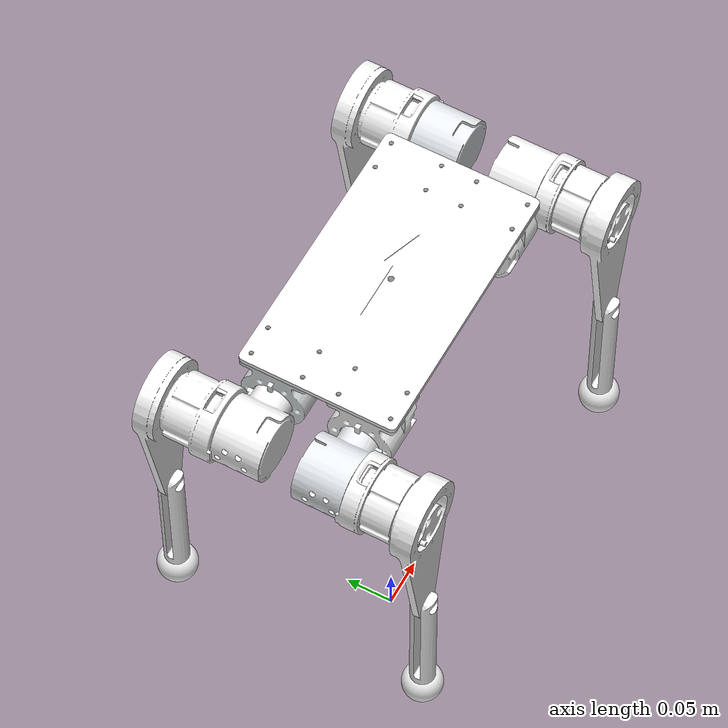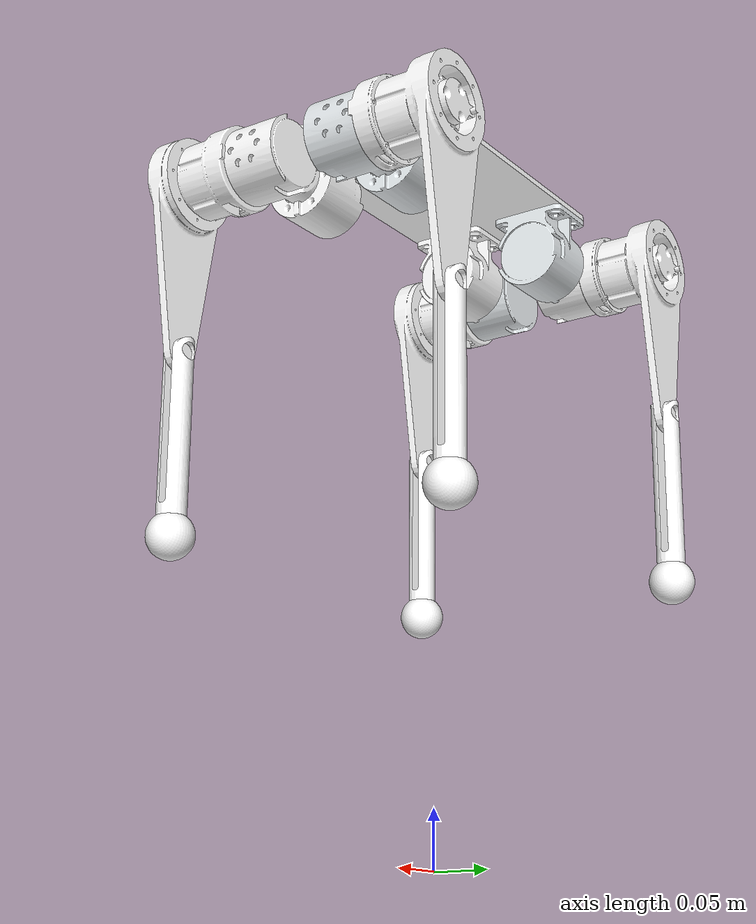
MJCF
<mujoco model="000">
  <compiler angle="radian" meshdir="../meshes/"/>

  <asset>
    <mesh name="base_link" file="base_link.STL"/>
    <mesh name="Link_ZQ1" file="Link_ZQ1.STL"/>
    <mesh name="Link_ZQ2" file="Link_ZQ2.STL"/>
    <mesh name="Link_ZQ3" file="Link_ZQ3.STL"/>
    <mesh name="Link_ZQ4" file="Link_ZQ4.STL"/>
    <mesh name="Link_ZQ5" file="Link_ZQ5.STL"/>
    <mesh name="Link_ZH1" file="Link_ZH1.STL"/>
    <mesh name="Link_ZH2" file="Link_ZH2.STL"/>
    <mesh name="Link_ZH3" file="Link_ZH3.STL"/>
    <mesh name="Link_ZH4" file="Link_ZH4.STL"/>
    <mesh name="Link_ZH5" file="Link_ZH5.STL"/>
    <mesh name="Link_YQ1" file="Link_YQ1.STL"/>
    <mesh name="Link_YQ2" file="Link_YQ2.STL"/>
    <mesh name="Link_YQ3" file="Link_YQ3.STL"/>
    <mesh name="Link_YQ4" file="Link_YQ4.STL"/>
    <mesh name="Link_YQ5" file="Link_YQ5.STL"/>
    <mesh name="Link_YH1" file="Link_YH1.STL"/>
    <mesh name="Link_YH2" file="Link_YH2.STL"/>
    <mesh name="Link_YH3" file="Link_YH3.STL"/>
    <mesh name="Link_YH4" file="Link_YH4.STL"/>
    <mesh name="Link_YH5" file="Link_YH5.STL"/>
  </asset>

  <worldbody>
    <body name="base_link" pos="0 0 0.6">
      <geom type="mesh" contype="0" conaffinity="0" group="1" density="0" rgba="1 1 1 1" mesh="base_link"/>
      <geom type="mesh" rgba="1 1 1 1" mesh="base_link"/>
      <joint name="floating_base_joint" type="free" limited="false" actuatorfrclimited="false"/>
      <geom pos="0.113 0.044 0" type="mesh" contype="0" conaffinity="0" group="1" density="0" rgba="0.898039 0.917647 0.929412 1" mesh="Link_ZQ1"/>
      <geom pos="0.113 0.044 0" type="mesh" rgba="0.898039 0.917647 0.929412 1" mesh="Link_ZQ1"/>
      <geom pos="-0.113 0.044 0" type="mesh" contype="0" conaffinity="0" group="1" density="0" rgba="0.898039 0.917647 0.929412 1" mesh="Link_ZH1"/>
      <geom pos="-0.113 0.044 0" type="mesh" rgba="0.898039 0.917647 0.929412 1" mesh="Link_ZH1"/>
      <geom pos="0.113 -0.044 0" type="mesh" contype="0" conaffinity="0" group="1" density="0" rgba="1 1 1 1" mesh="Link_YQ1"/>
      <geom pos="0.113 -0.044 0" type="mesh" rgba="1 1 1 1" mesh="Link_YQ1"/>
      <geom pos="-0.113 -0.044 0" quat="-3.67321e-06 0 0 -1" type="mesh" contype="0" conaffinity="0" group="1" density="0" rgba="1 1 1 1" mesh="Link_YH1"/>
      <geom pos="-0.113 -0.044 0" quat="-3.67321e-06 0 0 -1" type="mesh" rgba="1 1 1 1" mesh="Link_YH1"/>
      <site name="imu" pos="-0.0 0 0." />
      <body name="Link_ZQ2" pos="0.113 0.044 -0.04">
        <inertial pos="0.0663019 -0.00460558 1.61687e-08" quat="0.500665 0.500655 0.499335 0.499344" mass="0.368364" diaginertia="0.000175167 0.000157091 0.000147643"/>
        <joint name="joint_ZQ2" pos="0 0 0" axis="1 0 0" range="-0.79 0.79"/>
        <geom type="mesh" contype="0" conaffinity="0" group="1" density="0" rgba="0.898039 0.917647 0.929412 1" mesh="Link_ZQ2"/>
        <geom type="mesh" rgba="0.898039 0.917647 0.929412 1" mesh="Link_ZQ2"/>
        <body name="Link_ZQ3" pos="0.067 0 0">
          <inertial pos="-5.91352e-05 0.059451 -0.00768867" quat="0.707354 9.9172e-06 -9.92415e-06 0.706859" mass="0.538002" diaginertia="0.000517655 0.000436232 0.000212184"/>
          <joint name="joint_ZQ3" pos="0 0 0" axis="0 1 0" range="-3.14 3.14"/>
          <geom type="mesh" contype="0" conaffinity="0" group="1" density="0" rgba="1 1 1 1" mesh="Link_ZQ3"/>
          <geom type="mesh" rgba="1 1 1 1" mesh="Link_ZQ3"/>
          <body name="Link_ZQ4" pos="0 0.0885 -0.15">
            <inertial pos="-1.46154e-08 3.41698e-07 -0.105906" quat="1 0 0 -9.95816e-05" mass="0.0802946" diaginertia="0.000230871 0.000229843 9.65894e-06"/>
            <joint name="joint_ZQ4" pos="0 0 0" axis="0 1 0" range="-3.14 3.14"/>
            <geom type="mesh" contype="0" conaffinity="0" group="1" density="0" rgba="1 1 1 1" mesh="Link_ZQ4"/>
            <geom type="mesh" rgba="1 1 1 1" mesh="Link_ZQ4"/>
            <geom pos="0 0 -0.155" quat="1 0 0 0" type="mesh" contype="0" conaffinity="0" group="1" density="0" rgba="1 1 1 1" mesh="Link_ZQ5"/>
            <geom pos="0 0 -0.155" quat="1 0 0 0" type="mesh" rgba="1 1 1 1" mesh="Link_ZQ5"/>
          </body>
        </body>
      </body>
      <body name="Link_ZH2" pos="-0.113 0.044 -0.04">
        <inertial pos="-0.0663019 -0.00460559 -1.58356e-08" quat="0.499344 0.499335 0.500655 0.500665" mass="0.368364" diaginertia="0.000175167 0.000157091 0.000147643"/>
        <joint name="joint_ZH2" pos="0 0 0" axis="1 0 0" range="-0.79 0.79"/>
        <geom type="mesh" contype="0" conaffinity="0" group="1" density="0" rgba="1 1 1 1" mesh="Link_ZH2"/>
        <geom type="mesh" rgba="1 1 1 1" mesh="Link_ZH2"/>
        <body name="Link_ZH3" pos="-0.067 0 0">
          <inertial pos="-7.60103e-05 0.059451 -0.00768873" quat="0.707151 9.8267e-06 -9.82792e-06 0.707063" mass="0.538002" diaginertia="0.000517655 0.000436232 0.000212184"/>
          <joint name="joint_ZH3" pos="0 0 0" axis="0 1 0" range="-3.14 3.14"/>
          <geom type="mesh" contype="0" conaffinity="0" group="1" density="0" rgba="1 1 1 1" mesh="Link_ZH3"/>
          <geom type="mesh" rgba="1 1 1 1" mesh="Link_ZH3"/>
          <body name="Link_ZH4" pos="0 0.0885 -0.15">
            <inertial pos="-1.46154e-08 3.41698e-07 -0.105906" quat="1 0 0 -9.95816e-05" mass="0.0802946" diaginertia="0.000230871 0.000229843 9.65894e-06"/>
            <joint name="joint_ZH4" pos="0 0 0" axis="0 1 0" range="-3.14 3.14"/>
            <geom type="mesh" contype="0" conaffinity="0" group="1" density="0" rgba="1 1 1 1" mesh="Link_ZH4"/>
            <geom type="mesh" rgba="1 1 1 1" mesh="Link_ZH4"/>
            <geom pos="0 0 -0.155" quat="1 0 0 0" type="mesh" contype="0" conaffinity="0" group="1" density="0" rgba="1 1 1 1" mesh="Link_ZH5"/>
            <geom pos="0 0 -0.155" quat="1 0 0 0" type="mesh" rgba="1 1 1 1" mesh="Link_ZH5"/>
          </body>
        </body>
      </body>
      <body name="Link_YQ2" pos="0.113 -0.044 -0.04">
        <inertial pos="0.0663019 0.00460559 -1.58356e-08" quat="0.499335 0.499344 0.500665 0.500655" mass="0.368364" diaginertia="0.000175167 0.000157091 0.000147643"/>
        <joint name="joint_YQ2" pos="0 0 0" axis="1 0 0" range="-0.79 0.79"/>
        <geom type="mesh" contype="0" conaffinity="0" group="1" density="0" rgba="1 1 1 1" mesh="Link_YQ2"/>
        <geom type="mesh" rgba="1 1 1 1" mesh="Link_YQ2"/>
        <body name="Link_YQ3" pos="0.067 0 0">
          <inertial pos="-5.85993e-05 -0.0594509 -0.00768937" quat="0.706858 8.2122e-06 -8.20643e-06 0.707355" mass="0.538004" diaginertia="0.000517683 0.000436261 0.000212184"/>
          <joint name="joint_YQ3" pos="0 0 0" axis="0 1 0" range="-3.14 3.14"/>
          <geom type="mesh" contype="0" conaffinity="0" group="1" density="0" rgba="1 1 1 1" mesh="Link_YQ3"/>
          <geom type="mesh" rgba="1 1 1 1" mesh="Link_YQ3"/>
          <body name="Link_YQ4" pos="0 -0.0885 -0.15">
            <inertial pos="-1.46154e-08 3.41698e-07 -0.105906" quat="1 0 0 -9.95816e-05" mass="0.0802946" diaginertia="0.000230871 0.000229843 9.65894e-06"/>
            <joint name="joint_YQ4" pos="0 0 0" axis="0 1 0" range="-3.14 3.14"/>
            <geom type="mesh" contype="0" conaffinity="0" group="1" density="0" rgba="1 1 1 1" mesh="Link_YQ4"/>
            <geom type="mesh" rgba="1 1 1 1" mesh="Link_YQ4"/>
            <geom pos="0 0 -0.155" quat="1 0 0 0" type="mesh" contype="0" conaffinity="0" group="1" density="0" rgba="1 1 1 1" mesh="Link_YQ5"/>
            <geom pos="0 0 -0.155" quat="1 0 0 0" type="mesh" rgba="1 1 1 1" mesh="Link_YQ5"/>
          </body>
        </body>
      </body>
      <body name="Link_YH2" pos="-0.113 -0.044 -0.04" quat="-2.59735e-06 0.707107 -2.59735e-06 -0.707107">
        <inertial pos="-1.58357e-08 -0.00460558 0.0663019" quat="0.707106 0.000927553 -0.00094045 0.707106" mass="0.368364" diaginertia="0.000175167 0.000157091 0.000147643"/>
        <joint name="joint_YH2" pos="0 0 0" axis="0 0 -1" range="-0.79 0.79"/>
        <geom type="mesh" contype="0" conaffinity="0" group="1" density="0" rgba="0.898039 0.917647 0.929412 1" mesh="Link_YH2"/>
        <geom type="mesh" rgba="0.898039 0.917647 0.929412 1" mesh="Link_YH2"/>
        <body name="Link_YH3" pos="0 0 0.067" quat="0.5 -0.5 -0.5 -0.5">
          <inertial pos="7.5716e-05 0.00768936 0.0594509" quat="0.499975 0.499963 -0.500025 0.500037" mass="0.538004" diaginertia="0.000517683 0.000436261 0.000212184"/>
          <joint name="joint_YH3" pos="0 0 0" axis="0 0 -1" range="-3.14 3.14"/>
          <geom type="mesh" contype="0" conaffinity="0" group="1" density="0" rgba="1 1 1 1" mesh="Link_YH3"/>
          <geom type="mesh" rgba="1 1 1 1" mesh="Link_YH3"/>
          <body name="Link_YH4" pos="0 0.15 0.0885" quat="-2.59734e-06 2.59735e-06 -0.707108 0.707105">
            <inertial pos="-1.46154e-08 3.41698e-07 -0.105906" quat="1 0 0 -9.95816e-05" mass="0.0802946" diaginertia="0.000230871 0.000229843 9.65894e-06"/>
            <joint name="joint_YH4" pos="0 0 0" axis="0 1 0" range="-3.14 3.14"/>
            <geom type="mesh" contype="0" conaffinity="0" group="1" density="0" rgba="1 1 1 1" mesh="Link_YH4"/>
            <geom type="mesh" rgba="1 1 1 1" mesh="Link_YH4"/>
            <geom pos="0 0 -0.155" quat="1 0 0 0" type="mesh" contype="0" conaffinity="0" group="1" density="0" rgba="1 1 1 1" mesh="Link_YH5"/>
            <geom pos="0 0 -0.155" quat="1 0 0 0" type="mesh" rgba="1 1 1 1" mesh="Link_YH5"/>
          </body>
        </body>
      </body>
    </body>
  </worldbody>

  <actuator>
    <position joint="joint_ZQ2" kp="10.0" kv="0.1" ctrlrange="-1.04 1.04"/>
    <position joint="joint_YQ2" kp="10.0" kv="0.1" ctrlrange="-1.04 1.04"/>
    <position joint="joint_ZH2" kp="10.0" kv="0.1" ctrlrange="-1.04 1.04"/>
    <position joint="joint_YH2" kp="10.0" kv="0.1" ctrlrange="-1.04 1.04"/>
    <position joint="joint_ZQ3" kp="10.0" kv="0.1" ctrlrange="-2.6 2.6"/>
    <position joint="joint_YQ3" kp="10.0" kv="0.1" ctrlrange="-2.6 2.6"/>
    <position joint="joint_ZH3" kp="10.0" kv="0.1" ctrlrange="-2.6 2.6"/>
    <position joint="joint_YH3" kp="10.0" kv="0.1" ctrlrange="-2.6 2.6"/>
    <position joint="joint_ZQ4" kp="10.0" kv="0.1" ctrlrange="-2.5 -0.6"/>
    <position joint="joint_YQ4" kp="10.0" kv="0.1" ctrlrange="-2.5 -0.6"/>
    <position joint="joint_ZH4" kp="10.0" kv="0.1" ctrlrange="-2.5 -0.6"/>
    <position joint="joint_YH4" kp="10.0" kv="0.1" ctrlrange="-2.5 -0.6"/>
  </actuator>

  <sensor>
    <jointpos name="FR_hip_pos" joint="joint_YQ2" />
    <jointpos name="FR_thigh_pos" joint="joint_YQ3" />
    <jointpos name="FR_calf_pos" joint="joint_YQ4" />
    <jointpos name="FL_hip_pos" joint="joint_ZQ2" />
    <jointpos name="FL_thigh_pos" joint="joint_ZQ3" />
    <jointpos name="FL_calf_pos" joint="joint_ZQ4" />
    <jointpos name="RR_hip_pos" joint="joint_YH2" />
    <jointpos name="RR_thigh_pos" joint="joint_YH3" />
    <jointpos name="RR_calf_pos" joint="joint_YH4" />
    <jointpos name="RL_hip_pos" joint="joint_ZH2" />
    <jointpos name="RL_thigh_pos" joint="joint_ZH3" />
    <jointpos name="RL_calf_pos" joint="joint_ZH4" />

    <jointvel name="FR_hip_vel" joint="joint_YQ2" />
    <jointvel name="FR_thigh_vel" joint="joint_YQ3" />
    <jointvel name="FR_calf_vel" joint="joint_YQ4" />
    <jointvel name="FL_hip_vel" joint="joint_ZQ2" />
    <jointvel name="FL_thigh_vel" joint="joint_ZQ3" />
    <jointvel name="FL_calf_vel" joint="joint_ZQ4" />
    <jointvel name="RR_hip_vel" joint="joint_YH2" />
    <jointvel name="RR_thigh_vel" joint="joint_YH3" />
    <jointvel name="RR_calf_vel" joint="joint_YH4" />
    <jointvel name="RL_hip_vel" joint="joint_ZH2" />
    <jointvel name="RL_thigh_vel" joint="joint_ZH3" />
    <jointvel name="RL_calf_vel" joint="joint_ZH4" />

    <jointactuatorfrc name="FR_hip_torque" joint="joint_YQ2" noise="0.01" />
    <jointactuatorfrc name="FR_thigh_torque" joint="joint_YQ3" noise="0.01" />
    <jointactuatorfrc name="FR_calf_torque" joint="joint_YQ4" noise="0.01" />
    <jointactuatorfrc name="FL_hip_torque" joint="joint_ZQ2" noise="0.01" />
    <jointactuatorfrc name="FL_thigh_torque" joint="joint_ZQ3" noise="0.01" />
    <jointactuatorfrc name="FL_calf_torque" joint="joint_ZQ4" noise="0.01" />
    <jointactuatorfrc name="RR_hip_torque" joint="joint_YH2" noise="0.01" />
    <jointactuatorfrc name="RR_thigh_torque" joint="joint_YH3" noise="0.01" />
    <jointactuatorfrc name="RR_calf_torque" joint="joint_YH4" noise="0.01" />
    <jointactuatorfrc name="RL_hip_torque" joint="joint_ZH2" noise="0.01" />
    <jointactuatorfrc name="RL_thigh_torque" joint="joint_ZH3" noise="0.01" />
    <jointactuatorfrc name="RL_calf_torque" joint="joint_ZH4" noise="0.01" />

    <framequat name="imu_quat" objtype="site" objname="imu" />
    <gyro name="imu_gyro" site="imu" />
    <accelerometer name="imu_acc" site="imu" />

    <framepos name="frame_pos" objtype="site" objname="imu" />
    <framelinvel name="frame_vel" objtype="site" objname="imu" />
  </sensor>
</mujoco>
